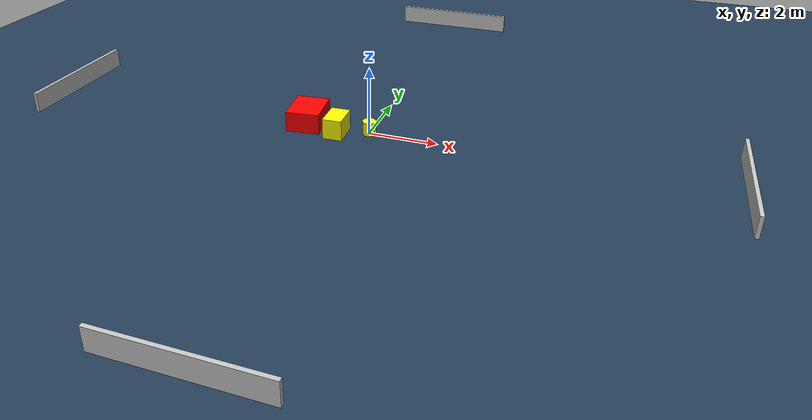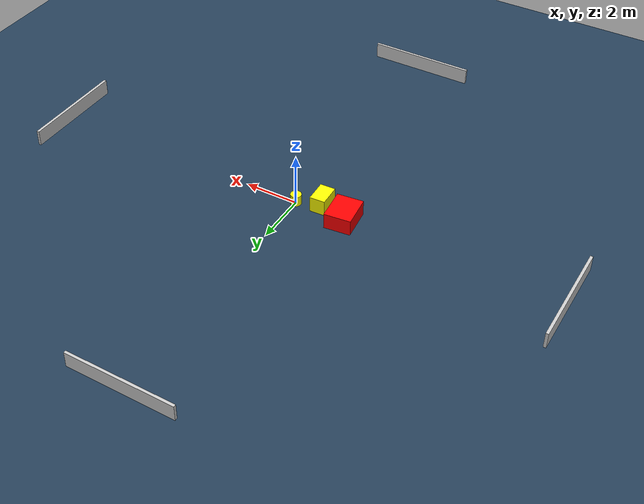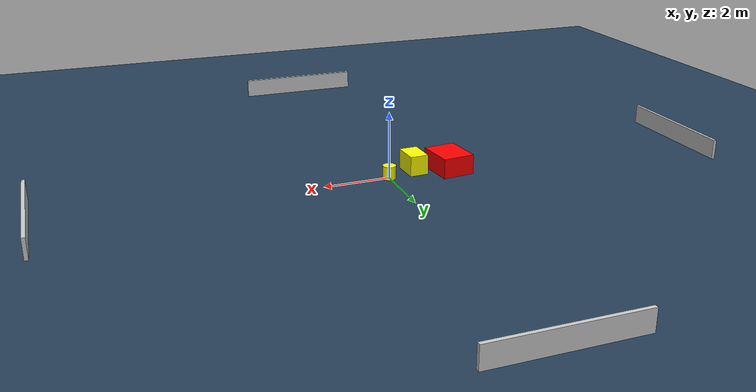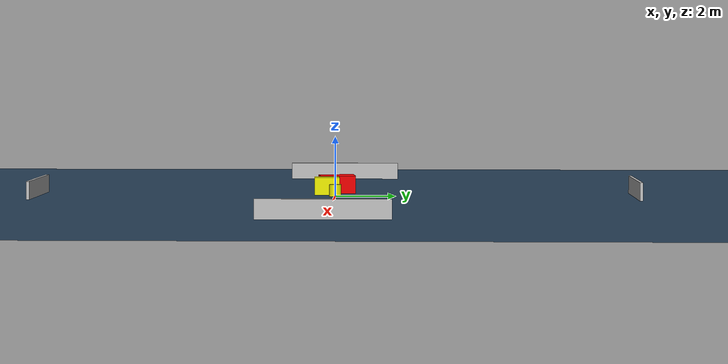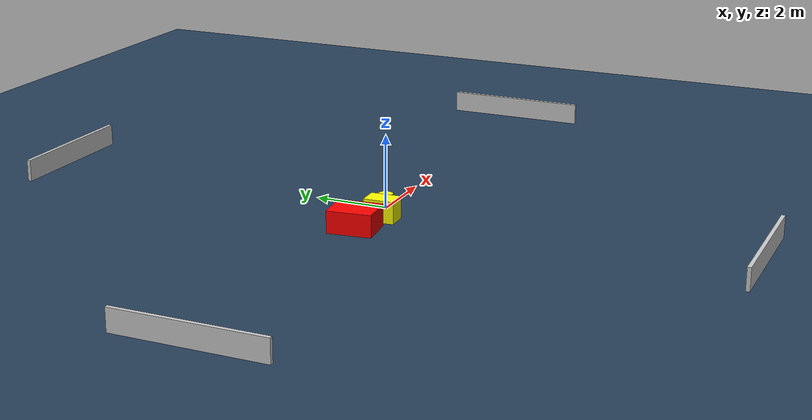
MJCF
<?xml version="1.0" ?>
<mujoco model="generated_environment">
  <option timestep="0.01" integrator="RK4" cone="elliptic"/>
  <default>
    <geom density="1"/>
  </default>
  <asset>
    <texture builtin="gradient" height="3072" name="skybox" rgb1="0.3 0.5 0.7" rgb2="0 0 0" type="skybox" width="512"/>
    <texture builtin="checker" height="300" name="groundplane" rgb1="0.2 0.3 0.4" rgb2="0.1 0.2 0.3" type="2d" width="300"/>
    <material name="groundplane" reflectance="0.2" texrepeat="5 5" texture="groundplane"/>
  </asset>
  <worldbody>
    <light dir="0 0 -1" directional="true" pos="0 0 1.5"/>
    <geom condim="3" friction="0.5 0.005 0.001" material="groundplane" name="floor" pos="0 0 0" size="0 0 0.05" type="plane"/>
    <body name="walls">
      <geom name="wall_1" condim="4" pos="-10.0 0.0 0.3" rgba="0.800000011920929 0.800000011920929 0.800000011920929 1.0" size="0.05 2.0 0.3" type="box"/>
      <geom name="wall_2" condim="4" pos="10.0 0.0 0.3" rgba="0.800000011920929 0.800000011920929 0.800000011920929 1.0" size="0.05 2.0 0.3" type="box"/>
      <geom name="wall_3" condim="4" pos="0.0 -10.0 0.3" rgba="0.800000011920929 0.800000011920929 0.800000011920929 1.0" size="2.0 0.05 0.3" type="box"/>
      <geom name="wall_4" condim="4" pos="0.0 10.0 0.3" rgba="0.800000011920929 0.800000011920929 0.800000011920929 1.0" size="2.0 0.05 0.3" type="box"/>
    </body>
    <body name="robot">
      <joint name="joint_x" type="slide" pos="0 0 0" axis="1 0 0"/>
      <joint name="joint_y" type="slide" pos="0 0 0" axis="0 1 0"/>
      <geom name="robot" type="cylinder" pos="0.0 0.0 0.2" size="0.2 0.2 0.0" mass="5.0" friction="1.0 0.005 0.0001" condim="4" rgba="1.0 1.0 0.0 1.0"/>
    </body>
    <body name="obstacle_1_movable">
      <geom name="obstacle_1_movable" condim="4" pos="-0.8904189685217596 -0.3102968081317062 0.3" euler="0 0 272.4606269882764" friction="0.0 0.005 0.001" rgba="1.0 1.0 0.0 1.0" size="0.4138591812372683 0.27982270770956047 0.3" type="box" mass="0.1"/>
      <joint type="free"/>
    </body>
    <body name="obstacle_2_static">
      <geom name="obstacle_2_static" condim="4" pos="-1.9016469121833997 -0.004265089366865582 0.3" euler="0 0 276.4011807679524" friction="0.0 0.005 0.001" rgba="1.0 0.0 0.0 1.0" size="0.5989094222599667 0.490450341593117 0.3" type="box"/>
    </body>
  </worldbody>
  <actuator>
    <motor name="actuator_x" joint="joint_x" gear="1" ctrlrange="-1 1"/>
    <motor name="actuator_y" joint="joint_y" gear="1" ctrlrange="-1 1"/>
  </actuator>
</mujoco>
